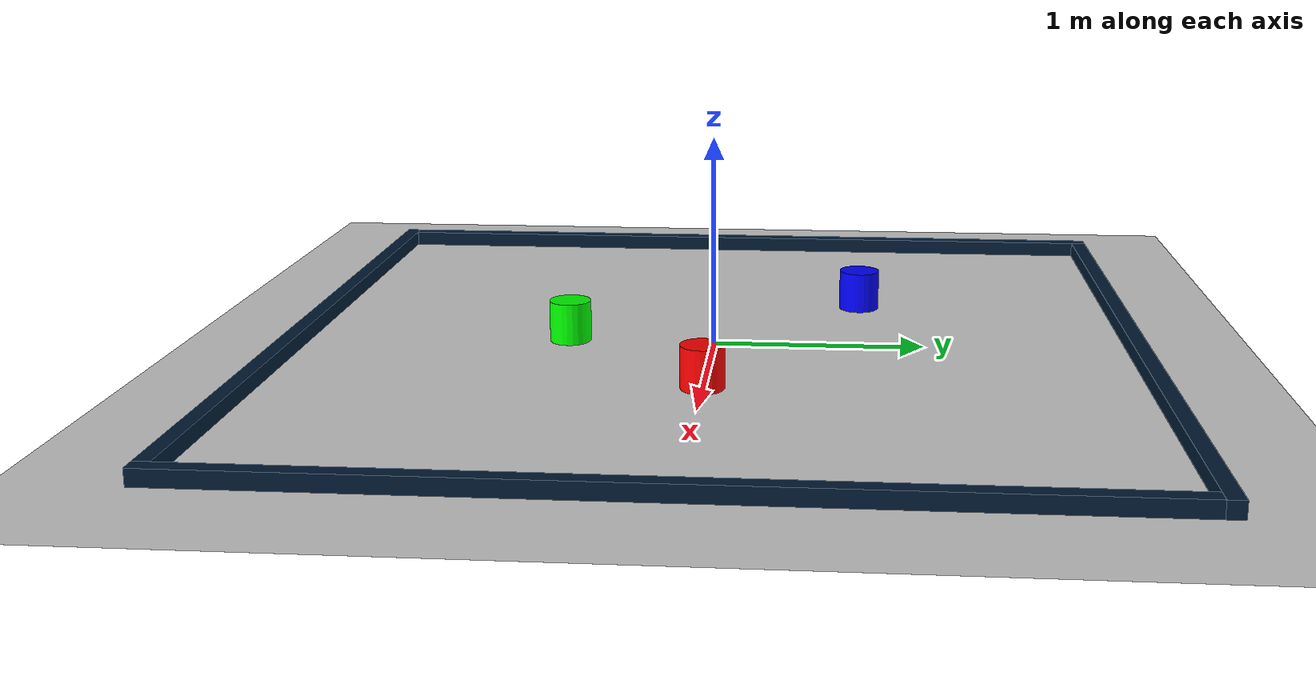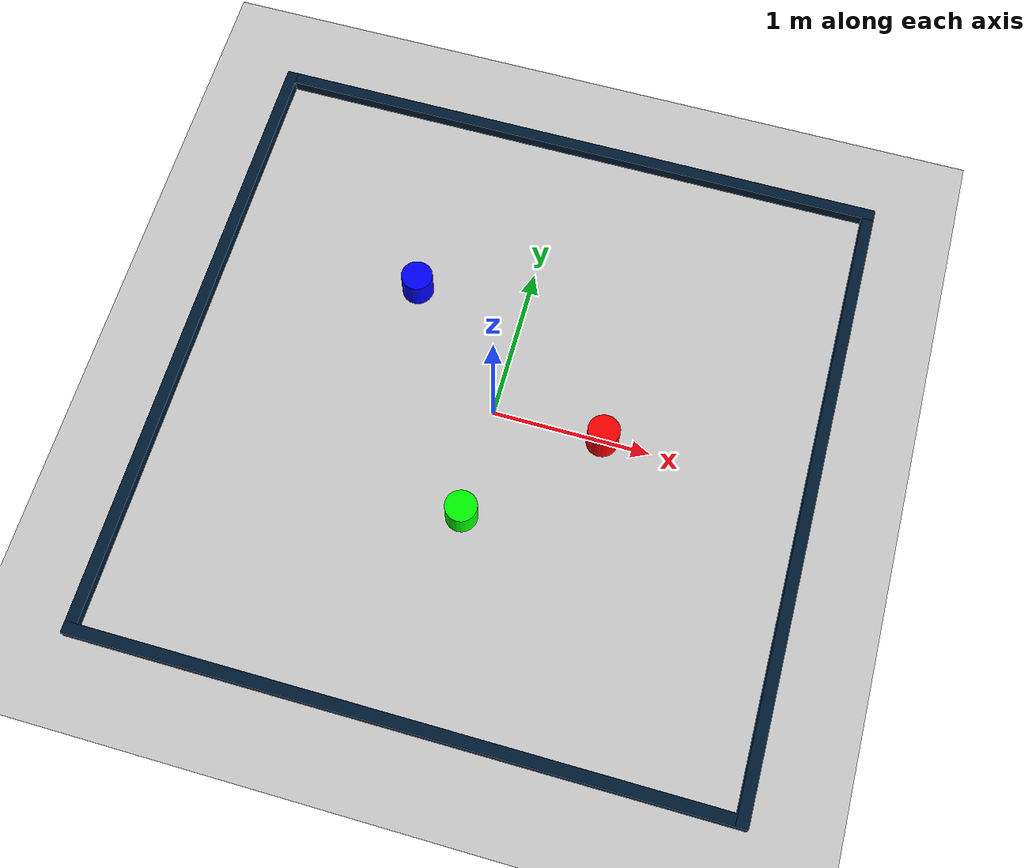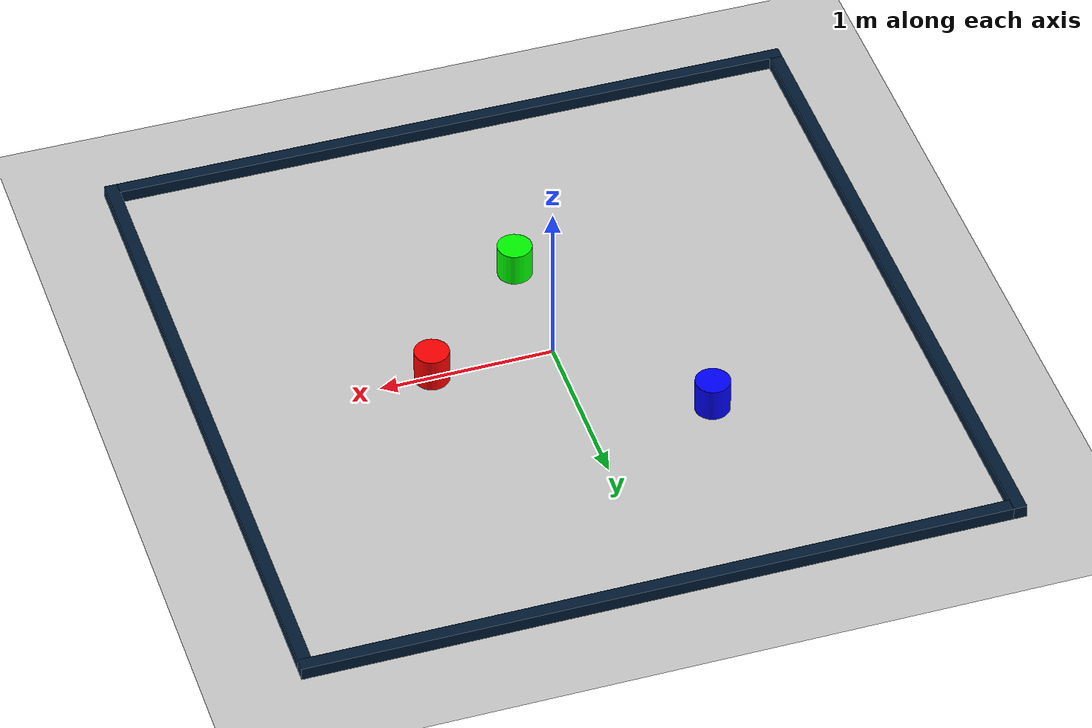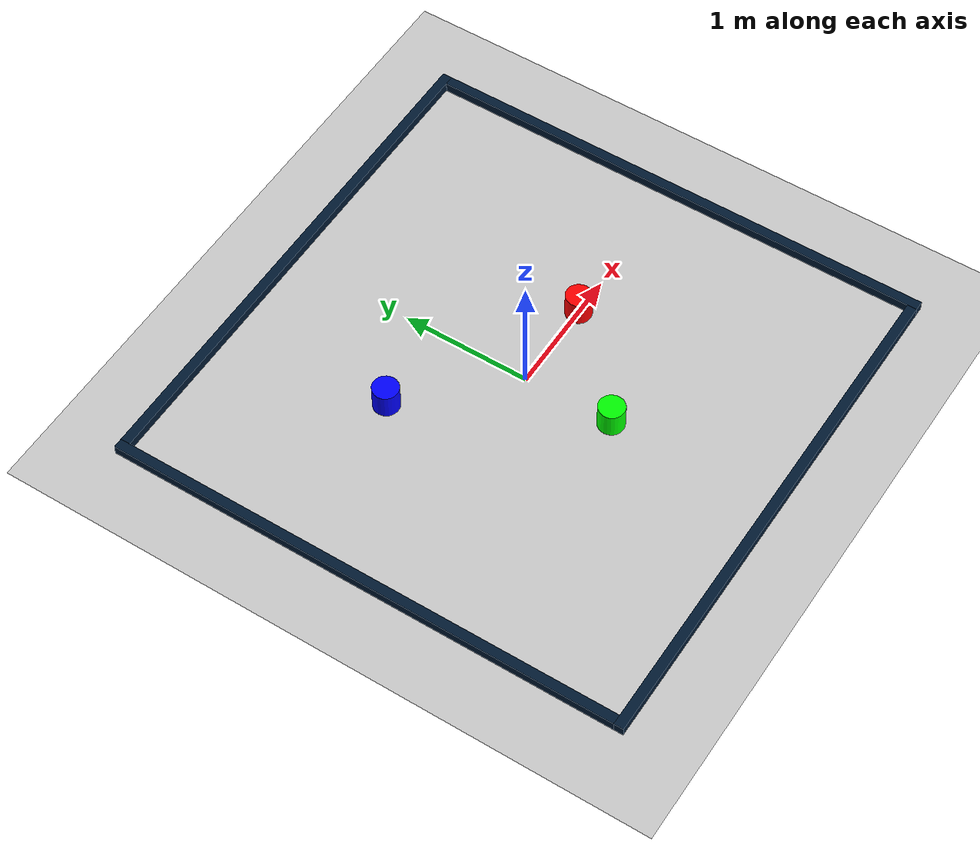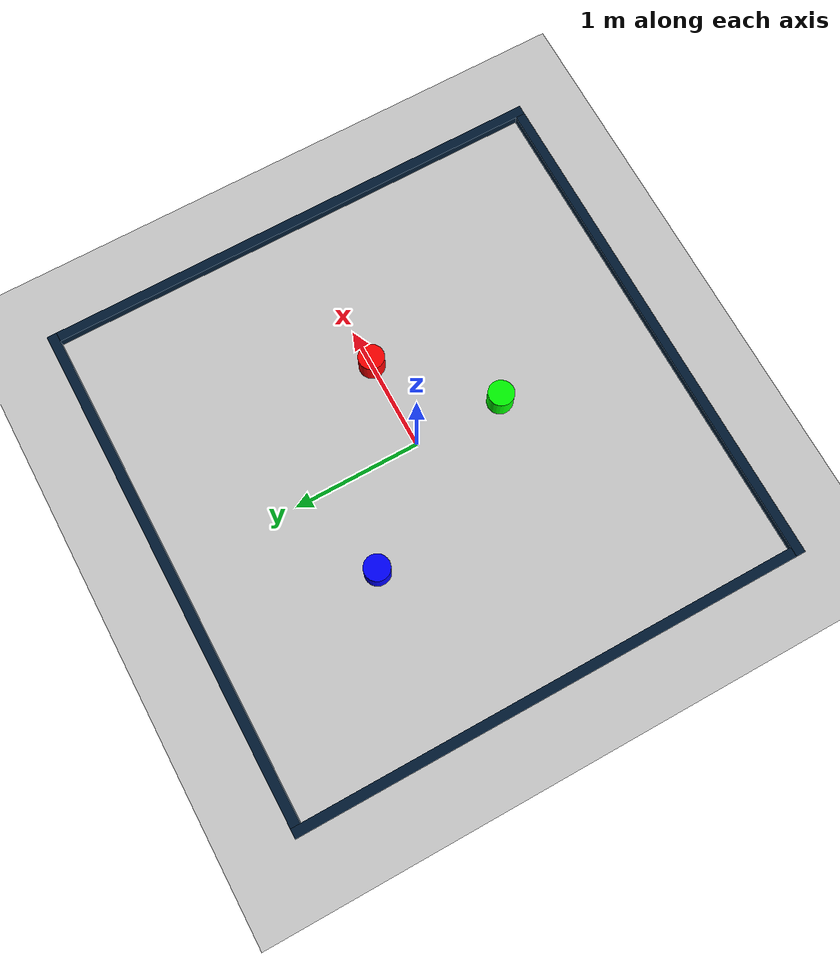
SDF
<?xml version="1.0"?>
<sdf version='1.8'>
    <world name='foundation'>
        <physics name='1ms' type='ignored'>
            <max_step_size>0.003</max_step_size>
            <real_time_factor>1</real_time_factor>
            <real_time_update_rate>1000</real_time_update_rate>
        </physics>
        <plugin name='ignition::gazebo::systems::Physics' filename='ignition-gazebo-physics-system' />
        <plugin name='ignition::gazebo::systems::UserCommands' filename='ignition-gazebo-user-commands-system' />
        <plugin name='ignition::gazebo::systems::SceneBroadcaster' filename='ignition-gazebo-scene-broadcaster-system' />
        <plugin name='ignition::gazebo::systems::Contact' filename='ignition-gazebo-contact-system' />

        <light name='sun1' type='directional'>
            <cast_shadows>1</cast_shadows>
            <pose>5 0 5 0 -0 0</pose>
            <diffuse>0.8 0.8 0.8 1</diffuse>
            <specular>0.2 0.2 0.2 1</specular>
            <attenuation>
                <range>1000</range>
                <constant>0.90000000000000002</constant>
                <linear>0.01</linear>
                <quadratic>0.001</quadratic>
            </attenuation>
            <direction>-0.5 0.1 -0.9</direction>
            <spot>
                <inner_angle>0</inner_angle>
                <outer_angle>0</outer_angle>
                <falloff>0</falloff>
            </spot>
        </light>
        <light name='sun2' type='directional'>
            <cast_shadows>1</cast_shadows>
            <pose>0 5 5 0 -0 0</pose>
            <diffuse>0.8 0.8 0.8 1</diffuse>
            <specular>0.2 0.2 0.2 1</specular>
            <attenuation>
                <range>1000</range>
                <constant>0.90000000000000002</constant>
                <linear>0.01</linear>
                <quadratic>0.001</quadratic>
            </attenuation>
            <direction>-0.5 0.1 -0.9</direction>
            <spot>
                <inner_angle>0</inner_angle>
                <outer_angle>0</outer_angle>
                <falloff>0</falloff>
            </spot>
        </light>
        <light name='sun3' type='directional'>
            <cast_shadows>1</cast_shadows>
            <pose>-5 0 5 0 -0 0</pose>
            <diffuse>0.8 0.8 0.8 1</diffuse>
            <specular>0.2 0.2 0.2 1</specular>
            <attenuation>
                <range>1000</range>
                <constant>0.90000000000000002</constant>
                <linear>0.01</linear>
                <quadratic>0.001</quadratic>
            </attenuation>
            <direction>-0.5 0.1 -0.9</direction>
            <spot>
                <inner_angle>0</inner_angle>
                <outer_angle>0</outer_angle>
                <falloff>0</falloff>
            </spot>
        </light>
        <light name='sun4' type='directional'>
            <cast_shadows>1</cast_shadows>
            <pose>0 -5 5 0 -0 0</pose>
            <diffuse>0.8 0.8 0.8 1</diffuse>
            <specular>0.2 0.2 0.2 1</specular>
            <attenuation>
                <range>1000</range>
                <constant>0.90000000000000002</constant>
                <linear>0.01</linear>
                <quadratic>0.001</quadratic>
            </attenuation>
            <direction>-0.5 0.1 -0.9</direction>
            <spot>
                <inner_angle>0</inner_angle>
                <outer_angle>0</outer_angle>
                <falloff>0</falloff>
            </spot>
        </light>

        <gravity>0 0 -9.8</gravity>
        <magnetic_field>6e-06 2.3e-05 -4.2e-05</magnetic_field>
        <atmosphere type='adiabatic' />

        <scene>
            <ambient>1 1 1 1</ambient>
            <background>0.98 0.92 0.84 1</background>
            <shadows>0</shadows>
            <grid>false</grid>
        </scene>

        <model name='ground_plane'>
            <static>1</static>
            <link name='link'>
                <collision name='collision'>
                    <geometry>
                        <plane>s
                            <normal>0 0 1</normal>
                            <size>3.925 3.925</size>
                        </plane>
                    </geometry>
                    <surface>
                        <friction>
                            <ode />
                        </friction>
                        <bounce />
                        <contact />
                    </surface>
                </collision>
                <visual name='visual'>
                    <geometry>
                        <plane>
                            <normal>0 0 1</normal>
                            <size>3.925 3.925</size>
                        </plane>
                    </geometry>
                    <material>
                        <ambient>0.8 0.8 0.8 1</ambient>
                        <diffuse>0.8 0.8 0.8 1</diffuse>
                        <specular>0.8 0.8 0.8 1</specular>
                    </material>
                    <plugin name='__default__' filename='__default__' />
                </visual>
            </link>
            <plugin name='__default__' filename='__default__' />
            <pose>0 0 0 0 0 0</pose>
        </model>

        <model name='border'>
            <pose>0 0 1 0 0 0</pose>
            <static>true</static>
            <link name='wall1'>
                <pose>-2 0.0375 -0.9625 0 0 0</pose>
                <static>true</static>
                <collision name='wall1_collision'>
                    <geometry>
                        <box>
                            <size>0.075 4 0.075</size>
                        </box>
                    </geometry>
                </collision>
                <visual name='wall1_visual'>
                    <geometry>
                        <box>
                            <size>0.075 4 0.075</size>
                        </box>
                    </geometry>
                    <material>
                        <ambient>0.1 0.1 0.1 1</ambient>
                        <diffuse>0 0.1 0.2 1</diffuse>
                        <specular>0 0.01 0.05 1</specular>
                    </material>
                </visual>
            </link>
            <link name='wall2'>
                <pose>2 -0.0375 -0.9625 0 0 0</pose>
                <static>true</static>
                <collision name='wall2_collision'>
                    <geometry>
                        <box>
                            <size>0.075 4 20.075</size>
                        </box>
                    </geometry>
                </collision>
                <visual name='wall2_visual'>
                    <geometry>
                        <box>
                            <size>0.075 4 0.075</size>
                        </box>
                    </geometry>
                    <material>
                        <ambient>0.1 0.1 0.1 1</ambient>
                        <diffuse>0 0.1 0.2 1</diffuse>
                        <specular>0 0.01 0.05 1</specular>
                    </material>
                </visual>
            </link>
            <link name='wall3'>
                <pose>0.0375 2 -0.9625 0 0 0</pose>
                <static>true</static>
                <collision name='wall3_collision'>
                    <geometry>
                        <box>
                            <size>4 0.075 0.075</size>
                        </box>
                    </geometry>
                </collision>
                <visual name='wall3_visual'>
                    <geometry>
                        <box>
                            <size>4 0.075 0.075</size>
                        </box>
                    </geometry>
                    <material>
                        <ambient>0.1 0.1 0.1 1</ambient>
                        <diffuse>0 0.1 0.2 1</diffuse>
                        <specular>0 0.01 0.05 1</specular>
                    </material>
                </visual>
            </link>
            <link name='wall4'>
                <pose>-0.0375 -2 -0.9625 0 0 0</pose>
                <static>true</static>
                <collision name='wall4_collision'>
                    <geometry>
                        <box>
                            <size>4 0.075 0.075</size>
                        </box>
                    </geometry>
                    <material>
                        <ambient>0.1 0.1 0.1 1</ambient>
                        <diffuse>0 0.1 0.2 1</diffuse>
                        <specular>0 0.01 0.05 1</specular>
                    </material>
                </collision>
                <visual name='wall4_visual'>
                    <geometry>
                        <box>
                            <size>4 0.075 0.075</size>
                        </box>
                    </geometry>
                    <material>
                        <ambient>0.1 0.1 0.1 1</ambient>
                        <diffuse>0 0.1 0.2 1</diffuse>
                        <specular>0 0.01 0.05 1</specular>
                    </material>
                </visual>
            </link>
        </model>

        <model name='obstacles'>
            <pose>0 0 0.1 0 0 0</pose>
            <static>true</static>
            <link name='obj1'>
                <pose>0.7 0 0 0 0 0</pose>
                <static>true</static>
                <collision name='obj1_collision'>
                    <geometry>
                        <cylinder>
                            <radius>0.1</radius>
                            <length>0.2</length>
                        </cylinder>
                    </geometry>
                </collision>
                <visual name='obj1_visual'>
                    <geometry>
                        <cylinder>
                            <radius>0.1</radius>
                            <length>0.2</length>
                        </cylinder>
                    </geometry>
                    <material>
                        <ambient>1 0 0 1</ambient>
                        <diffuse>1 0 0 1</diffuse>
                        <specular>1 0 0 1</specular>
                    </material>
                </visual>
            </link>

            <link name='obj2'>
                <pose>-0.7 0.7 0 0 0 0</pose>
                <static>true</static>
                <collision name='obj2_collision'>
                    <geometry>
                        <cylinder>
                            <radius>0.1</radius>
                            <length>0.2</length>
                        </cylinder>
                    </geometry>
                </collision>
                <visual name='obj2_visual'>
                    <geometry>
                        <cylinder>
                            <radius>0.1</radius>
                            <length>0.2</length>
                        </cylinder>
                    </geometry>
                    <material>
                        <ambient>0 0 1 1</ambient>
                        <diffuse>0 0 1 1</diffuse>
                        <specular>0 0 1 1</specular>
                    </material>
                </visual>
            </link>

            <link name='obj3'>
                <pose>0 -0.7 0 0 0 0</pose>
                <static>true</static>
                <collision name='obj3_collision'>
                    <geometry>
                        <cylinder>
                            <radius>0.1</radius>
                            <length>0.2</length>
                        </cylinder>
                    </geometry>
                </collision>
                <visual name='obj3_visual'>
                    <geometry>
                        <cylinder>
                            <radius>0.1</radius>
                            <length>0.2</length>
                        </cylinder>
                    </geometry>
                    <material>
                        <ambient>0 1 0 1</ambient>
                        <diffuse>0 1 0 1</diffuse>
                        <specular>0 1 0 1</specular>
                    </material>
                </visual>
            </link>
        </model>
    </world>
</sdf>
